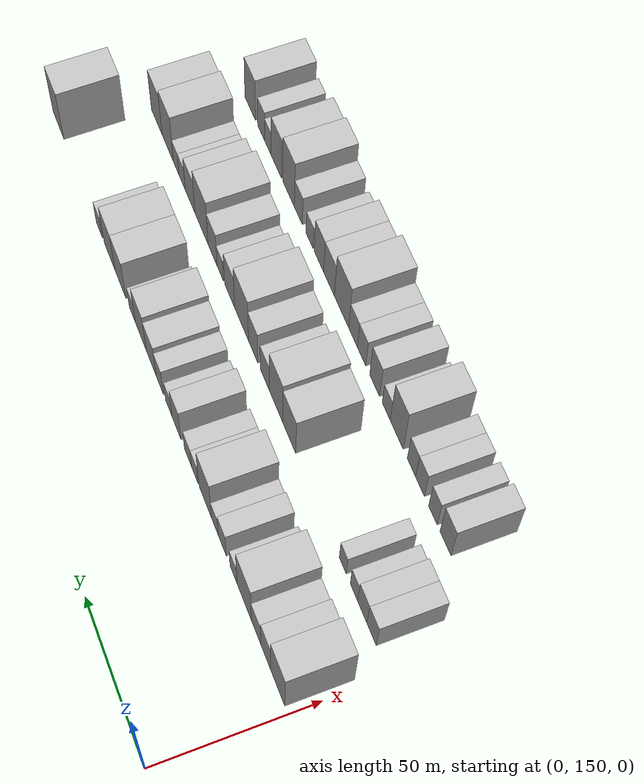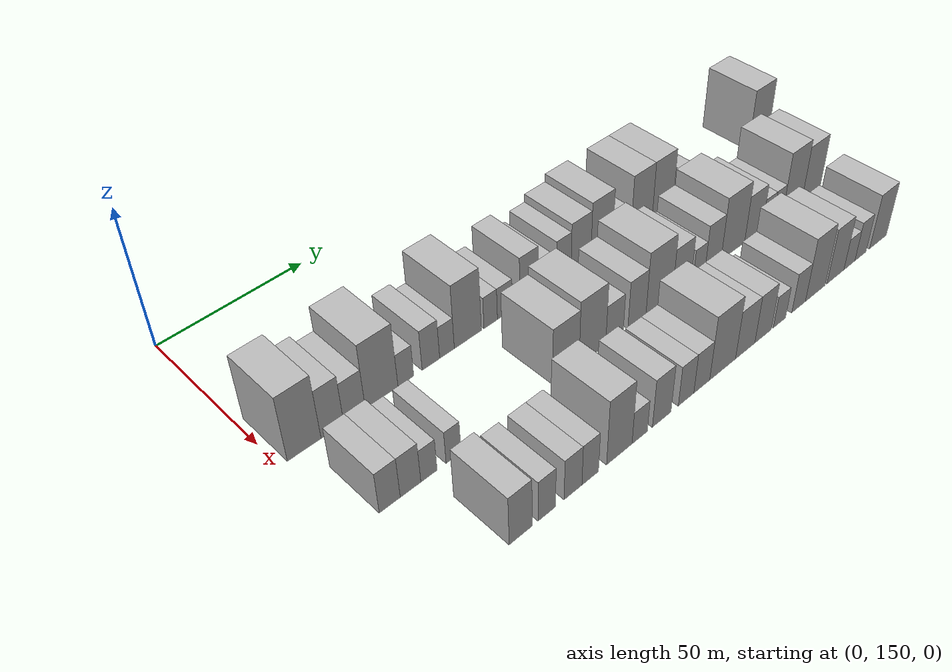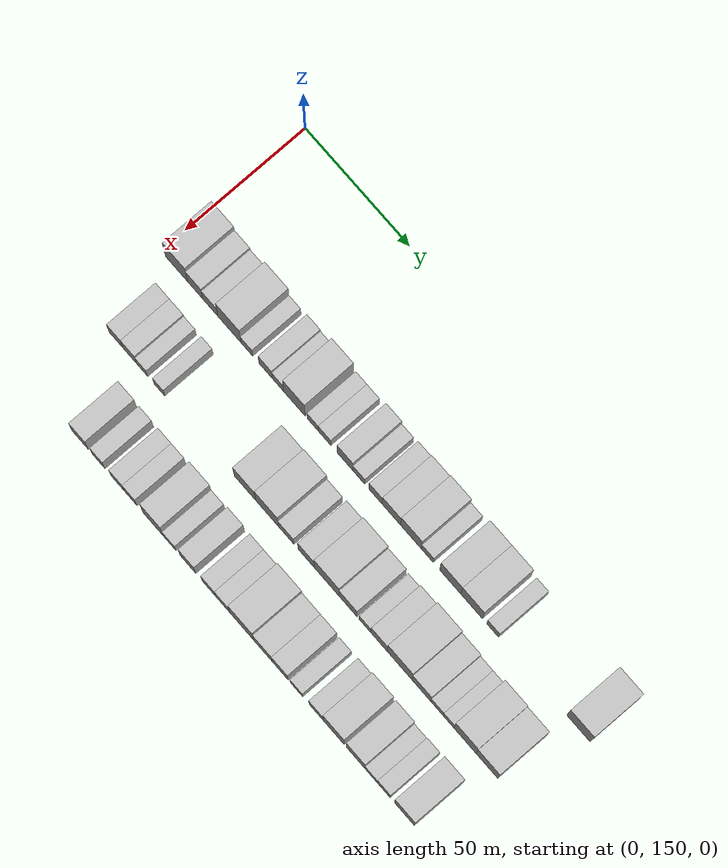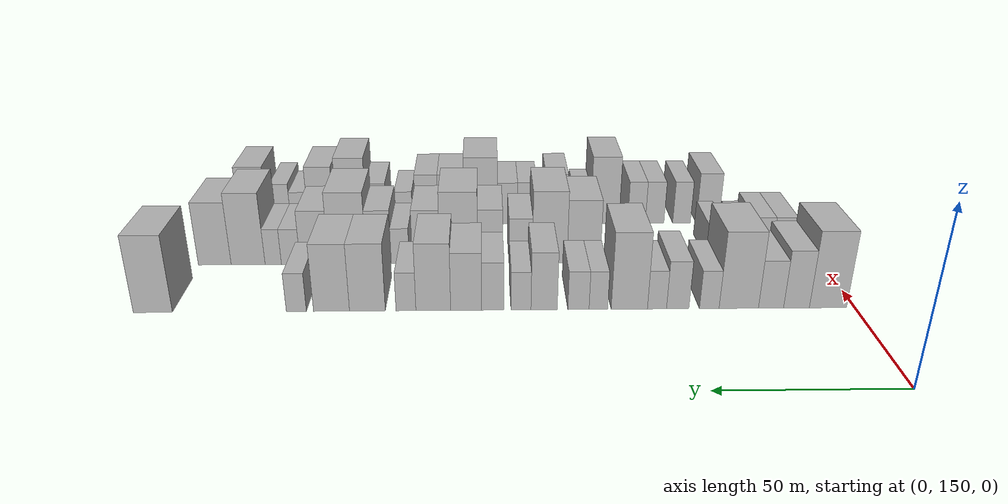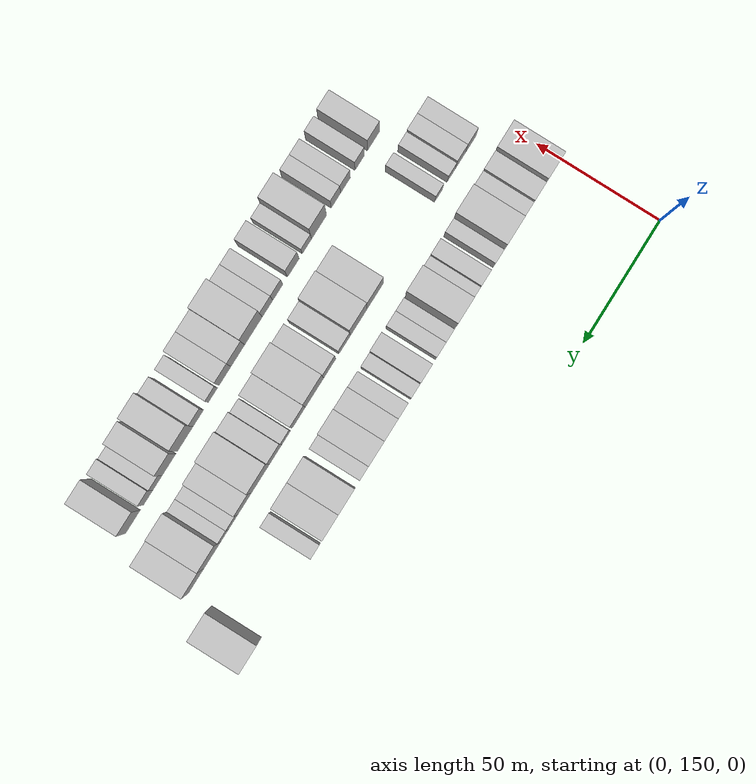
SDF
<sdf version="1.6">
 <world name="default">
  <model name="building_55">
   <static>1</static>
   <pose>50.0000 157.6588 0 0.000000 0.000000 0.000000</pose>
   <link name="link">
    <pose>0 0 12.00 0 0 0</pose>
    <collision name="collision"><geometry><box><size>20.0000 10.6210 24.0000</size></box></geometry></collision>
    <visual name="visual">
     <cast_shadows>0</cast_shadows>
     <geometry><box><size>20.0000 10.6210 24.0000</size></box></geometry>
     <material>
      <script>
       <uri>model://HANNAS_wall/materials/scripts</uri>
       <uri>model://HANNAS_wall/materials/textures</uri>
       <name>vrc/HANNAS_wall</name>
      </script>
     </material>
    </visual>
   </link>
  </model>
  <model name="building_56">
   <static>1</static>
   <pose>50.0000 166.6477 0 0.000000 0.000000 0.000000</pose>
   <link name="link">
    <pose>0 0 9.00 0 0 0</pose>
    <collision name="collision"><geometry><box><size>20.0000 7.3567 18.0000</size></box></geometry></collision>
    <visual name="visual">
     <cast_shadows>0</cast_shadows>
     <geometry><box><size>20.0000 7.3567 18.0000</size></box></geometry>
     <material>
      <script>
       <uri>model://HANNAS_wall/materials/scripts</uri>
       <uri>model://HANNAS_wall/materials/textures</uri>
       <name>vrc/HANNAS_wall</name>
      </script>
     </material>
    </visual>
   </link>
  </model>
  <model name="building_57">
   <static>1</static>
   <pose>50.0000 173.9100 0 0.000000 0.000000 0.000000</pose>
   <link name="link">
    <pose>0 0 7.50 0 0 0</pose>
    <collision name="collision"><geometry><box><size>20.0000 7.1679 15.0000</size></box></geometry></collision>
    <visual name="visual">
     <cast_shadows>0</cast_shadows>
     <geometry><box><size>20.0000 7.1679 15.0000</size></box></geometry>
     <material>
      <script>
       <uri>model://HANNAS_wall/materials/scripts</uri>
       <uri>model://HANNAS_wall/materials/textures</uri>
       <name>vrc/HANNAS_wall</name>
      </script>
     </material>
    </visual>
   </link>
  </model>
  <model name="building_58">
   <static>1</static>
   <pose>50.0000 183.1012 0 0.000000 0.000000 0.000000</pose>
   <link name="link">
    <pose>0 0 12.00 0 0 0</pose>
    <collision name="collision"><geometry><box><size>20.0000 11.2146 24.0000</size></box></geometry></collision>
    <visual name="visual">
     <cast_shadows>0</cast_shadows>
     <geometry><box><size>20.0000 11.2146 24.0000</size></box></geometry>
     <material>
      <script>
       <uri>model://HANNAS_wall/materials/scripts</uri>
       <uri>model://HANNAS_wall/materials/textures</uri>
       <name>vrc/HANNAS_wall</name>
      </script>
     </material>
    </visual>
   </link>
  </model>
  <model name="building_59">
   <static>1</static>
   <pose>50.0000 191.4912 0 0.000000 0.000000 0.000000</pose>
   <link name="link">
    <pose>0 0 6.00 0 0 0</pose>
    <collision name="collision"><geometry><box><size>20.0000 5.5652 12.0000</size></box></geometry></collision>
    <visual name="visual">
     <cast_shadows>0</cast_shadows>
     <geometry><box><size>20.0000 5.5652 12.0000</size></box></geometry>
     <material>
      <script>
       <uri>model://HANNAS_wall/materials/scripts</uri>
       <uri>model://HANNAS_wall/materials/textures</uri>
       <name>vrc/HANNAS_wall</name>
      </script>
     </material>
    </visual>
   </link>
  </model>
  <model name="building_60">
   <static>1</static>
   <pose>50.0000 200.4604 0 0.000000 0.000000 0.000000</pose>
   <link name="link">
    <pose>0 0 7.50 0 0 0</pose>
    <collision name="collision"><geometry><box><size>20.0000 6.3732 15.0000</size></box></geometry></collision>
    <visual name="visual">
     <cast_shadows>0</cast_shadows>
     <geometry><box><size>20.0000 6.3732 15.0000</size></box></geometry>
     <material>
      <script>
       <uri>model://HANNAS_wall/materials/scripts</uri>
       <uri>model://HANNAS_wall/materials/textures</uri>
       <name>vrc/HANNAS_wall</name>
      </script>
     </material>
    </visual>
   </link>
  </model>
  <model name="building_61">
   <static>1</static>
   <pose>50.0000 206.3600 0 0.000000 0.000000 0.000000</pose>
   <link name="link">
    <pose>0 0 6.00 0 0 0</pose>
    <collision name="collision"><geometry><box><size>20.0000 5.4259 12.0000</size></box></geometry></collision>
    <visual name="visual">
     <cast_shadows>0</cast_shadows>
     <geometry><box><size>20.0000 5.4259 12.0000</size></box></geometry>
     <material>
      <script>
       <uri>model://HANNAS_wall/materials/scripts</uri>
       <uri>model://HANNAS_wall/materials/textures</uri>
       <name>vrc/HANNAS_wall</name>
      </script>
     </material>
    </visual>
   </link>
  </model>
  <model name="building_62">
   <static>1</static>
   <pose>50.0000 214.2156 0 0.000000 0.000000 0.000000</pose>
   <link name="link">
    <pose>0 0 12.00 0 0 0</pose>
    <collision name="collision"><geometry><box><size>20.0000 10.2854 24.0000</size></box></geometry></collision>
    <visual name="visual">
     <cast_shadows>0</cast_shadows>
     <geometry><box><size>20.0000 10.2854 24.0000</size></box></geometry>
     <material>
      <script>
       <uri>model://HANNAS_wall/materials/scripts</uri>
       <uri>model://HANNAS_wall/materials/textures</uri>
       <name>vrc/HANNAS_wall</name>
      </script>
     </material>
    </visual>
   </link>
  </model>
  <model name="building_63">
   <static>1</static>
   <pose>50.0000 222.9986 0 0.000000 0.000000 0.000000</pose>
   <link name="link">
    <pose>0 0 6.00 0 0 0</pose>
    <collision name="collision"><geometry><box><size>20.0000 5.2804 12.0000</size></box></geometry></collision>
    <visual name="visual">
     <cast_shadows>0</cast_shadows>
     <geometry><box><size>20.0000 5.2804 12.0000</size></box></geometry>
     <material>
      <script>
       <uri>model://HANNAS_wall/materials/scripts</uri>
       <uri>model://HANNAS_wall/materials/textures</uri>
       <name>vrc/HANNAS_wall</name>
      </script>
     </material>
    </visual>
   </link>
  </model>
  <model name="building_64">
   <static>1</static>
   <pose>50.0000 228.6378 0 0.000000 0.000000 0.000000</pose>
   <link name="link">
    <pose>0 0 6.00 0 0 0</pose>
    <collision name="collision"><geometry><box><size>20.0000 5.9982 12.0000</size></box></geometry></collision>
    <visual name="visual">
     <cast_shadows>0</cast_shadows>
     <geometry><box><size>20.0000 5.9982 12.0000</size></box></geometry>
     <material>
      <script>
       <uri>model://HANNAS_wall/materials/scripts</uri>
       <uri>model://HANNAS_wall/materials/textures</uri>
       <name>vrc/HANNAS_wall</name>
      </script>
     </material>
    </visual>
   </link>
  </model>
  <model name="building_65">
   <static>1</static>
   <pose>50.0000 238.3654 0 0.000000 0.000000 0.000000</pose>
   <link name="link">
    <pose>0 0 9.00 0 0 0</pose>
    <collision name="collision"><geometry><box><size>20.0000 7.4569 18.0000</size></box></geometry></collision>
    <visual name="visual">
     <cast_shadows>0</cast_shadows>
     <geometry><box><size>20.0000 7.4569 18.0000</size></box></geometry>
     <material>
      <script>
       <uri>model://HANNAS_wall/materials/scripts</uri>
       <uri>model://HANNAS_wall/materials/textures</uri>
       <name>vrc/HANNAS_wall</name>
      </script>
     </material>
    </visual>
   </link>
  </model>
  <model name="building_66">
   <static>1</static>
   <pose>50.0000 244.9169 0 0.000000 0.000000 0.000000</pose>
   <link name="link">
    <pose>0 0 6.00 0 0 0</pose>
    <collision name="collision"><geometry><box><size>20.0000 5.6462 12.0000</size></box></geometry></collision>
    <visual name="visual">
     <cast_shadows>0</cast_shadows>
     <geometry><box><size>20.0000 5.6462 12.0000</size></box></geometry>
     <material>
      <script>
       <uri>model://HANNAS_wall/materials/scripts</uri>
       <uri>model://HANNAS_wall/materials/textures</uri>
       <name>vrc/HANNAS_wall</name>
      </script>
     </material>
    </visual>
   </link>
  </model>
  <model name="building_67">
   <static>1</static>
   <pose>50.0000 252.8970 0 0.000000 0.000000 0.000000</pose>
   <link name="link">
    <pose>0 0 7.50 0 0 0</pose>
    <collision name="collision"><geometry><box><size>20.0000 6.3140 15.0000</size></box></geometry></collision>
    <visual name="visual">
     <cast_shadows>0</cast_shadows>
     <geometry><box><size>20.0000 6.3140 15.0000</size></box></geometry>
     <material>
      <script>
       <uri>model://HANNAS_wall/materials/scripts</uri>
       <uri>model://HANNAS_wall/materials/textures</uri>
       <name>vrc/HANNAS_wall</name>
      </script>
     </material>
    </visual>
   </link>
  </model>
  <model name="building_68">
   <static>1</static>
   <pose>50.0000 260.4261 0 0.000000 0.000000 0.000000</pose>
   <link name="link">
    <pose>0 0 9.00 0 0 0</pose>
    <collision name="collision"><geometry><box><size>20.0000 8.7442 18.0000</size></box></geometry></collision>
    <visual name="visual">
     <cast_shadows>0</cast_shadows>
     <geometry><box><size>20.0000 8.7442 18.0000</size></box></geometry>
     <material>
      <script>
       <uri>model://HANNAS_wall/materials/scripts</uri>
       <uri>model://HANNAS_wall/materials/textures</uri>
       <name>vrc/HANNAS_wall</name>
      </script>
     </material>
    </visual>
   </link>
  </model>
  <model name="building_69">
   <static>1</static>
   <pose>50.0000 269.7042 0 0.000000 0.000000 0.000000</pose>
   <link name="link">
    <pose>0 0 10.50 0 0 0</pose>
    <collision name="collision"><geometry><box><size>20.0000 9.8119 21.0000</size></box></geometry></collision>
    <visual name="visual">
     <cast_shadows>0</cast_shadows>
     <geometry><box><size>20.0000 9.8119 21.0000</size></box></geometry>
     <material>
      <script>
       <uri>model://HANNAS_wall/materials/scripts</uri>
       <uri>model://HANNAS_wall/materials/textures</uri>
       <name>vrc/HANNAS_wall</name>
      </script>
     </material>
    </visual>
   </link>
  </model>
  <model name="building_70">
   <static>1</static>
   <pose>50.0000 277.4177 0 0.000000 0.000000 0.000000</pose>
   <link name="link">
    <pose>0 0 6.00 0 0 0</pose>
    <collision name="collision"><geometry><box><size>20.0000 5.6151 12.0000</size></box></geometry></collision>
    <visual name="visual">
     <cast_shadows>0</cast_shadows>
     <geometry><box><size>20.0000 5.6151 12.0000</size></box></geometry>
     <material>
      <script>
       <uri>model://HANNAS_wall/materials/scripts</uri>
       <uri>model://HANNAS_wall/materials/textures</uri>
       <name>vrc/HANNAS_wall</name>
      </script>
     </material>
    </visual>
   </link>
  </model>
  <model name="building_71">
   <static>1</static>
   <pose>50.0000 288.2781 0 0.000000 0.000000 0.000000</pose>
   <link name="link">
    <pose>0 0 10.50 0 0 0</pose>
    <collision name="collision"><geometry><box><size>20.0000 10.1058 21.0000</size></box></geometry></collision>
    <visual name="visual">
     <cast_shadows>0</cast_shadows>
     <geometry><box><size>20.0000 10.1058 21.0000</size></box></geometry>
     <material>
      <script>
       <uri>model://HANNAS_wall/materials/scripts</uri>
       <uri>model://HANNAS_wall/materials/textures</uri>
       <name>vrc/HANNAS_wall</name>
      </script>
     </material>
    </visual>
   </link>
  </model>
  <model name="building_72">
   <static>1</static>
   <pose>50.0000 298.3959 0 0.000000 0.000000 0.000000</pose>
   <link name="link">
    <pose>0 0 10.50 0 0 0</pose>
    <collision name="collision"><geometry><box><size>20.0000 10.1297 21.0000</size></box></geometry></collision>
    <visual name="visual">
     <cast_shadows>0</cast_shadows>
     <geometry><box><size>20.0000 10.1297 21.0000</size></box></geometry>
     <material>
      <script>
       <uri>model://HANNAS_wall/materials/scripts</uri>
       <uri>model://HANNAS_wall/materials/textures</uri>
       <name>vrc/HANNAS_wall</name>
      </script>
     </material>
    </visual>
   </link>
  </model>
  <model name="building_73">
   <static>1</static>
   <pose>50.0000 308.2839 0 0.000000 0.000000 0.000000</pose>
   <link name="link">
    <pose>0 0 6.00 0 0 0</pose>
    <collision name="collision"><geometry><box><size>20.0000 5.6463 12.0000</size></box></geometry></collision>
    <visual name="visual">
     <cast_shadows>0</cast_shadows>
     <geometry><box><size>20.0000 5.6463 12.0000</size></box></geometry>
     <material>
      <script>
       <uri>model://HANNAS_wall/materials/scripts</uri>
       <uri>model://HANNAS_wall/materials/textures</uri>
       <name>vrc/HANNAS_wall</name>
      </script>
     </material>
    </visual>
   </link>
  </model>
  <model name="building_74">
   <static>1</static>
   <pose>50.0000 348.5858 0 0.000000 0.000000 0.000000</pose>
   <link name="link">
    <pose>0 0 12.00 0 0 0</pose>
    <collision name="collision"><geometry><box><size>20.0000 10.9858 24.0000</size></box></geometry></collision>
    <visual name="visual">
     <cast_shadows>0</cast_shadows>
     <geometry><box><size>20.0000 10.9858 24.0000</size></box></geometry>
     <material>
      <script>
       <uri>model://HANNAS_wall/materials/scripts</uri>
       <uri>model://HANNAS_wall/materials/textures</uri>
       <name>vrc/HANNAS_wall</name>
      </script>
     </material>
    </visual>
   </link>
  </model>
  <model name="building_133">
   <static>1</static>
   <pose>79.0000 162.3231 0 0.000000 0.000000 0.000000</pose>
   <link name="link">
    <pose>0 0 7.50 0 0 0</pose>
    <collision name="collision"><geometry><box><size>20.0000 6.6489 15.0000</size></box></geometry></collision>
    <visual name="visual">
     <cast_shadows>0</cast_shadows>
     <geometry><box><size>20.0000 6.6489 15.0000</size></box></geometry>
     <material>
      <script>
       <uri>model://HANNAS_wall/materials/scripts</uri>
       <uri>model://HANNAS_wall/materials/textures</uri>
       <name>vrc/HANNAS_wall</name>
      </script>
     </material>
    </visual>
   </link>
  </model>
  <model name="building_134">
   <static>1</static>
   <pose>79.0000 168.9756 0 0.000000 0.000000 0.000000</pose>
   <link name="link">
    <pose>0 0 7.50 0 0 0</pose>
    <collision name="collision"><geometry><box><size>20.0000 6.6561 15.0000</size></box></geometry></collision>
    <visual name="visual">
     <cast_shadows>0</cast_shadows>
     <geometry><box><size>20.0000 6.6561 15.0000</size></box></geometry>
     <material>
      <script>
       <uri>model://HANNAS_wall/materials/scripts</uri>
       <uri>model://HANNAS_wall/materials/textures</uri>
       <name>vrc/HANNAS_wall</name>
      </script>
     </material>
    </visual>
   </link>
  </model>
  <model name="building_135">
   <static>1</static>
   <pose>79.0000 174.9876 0 0.000000 0.000000 0.000000</pose>
   <link name="link">
    <pose>0 0 6.00 0 0 0</pose>
    <collision name="collision"><geometry><box><size>20.0000 5.3680 12.0000</size></box></geometry></collision>
    <visual name="visual">
     <cast_shadows>0</cast_shadows>
     <geometry><box><size>20.0000 5.3680 12.0000</size></box></geometry>
     <material>
      <script>
       <uri>model://HANNAS_wall/materials/scripts</uri>
       <uri>model://HANNAS_wall/materials/textures</uri>
       <name>vrc/HANNAS_wall</name>
      </script>
     </material>
    </visual>
   </link>
  </model>
  <model name="building_136">
   <static>1</static>
   <pose>79.0000 183.2345 0 0.000000 0.000000 0.000000</pose>
   <link name="link">
    <pose>0 0 6.00 0 0 0</pose>
    <collision name="collision"><geometry><box><size>20.0000 5.1258 12.0000</size></box></geometry></collision>
    <visual name="visual">
     <cast_shadows>0</cast_shadows>
     <geometry><box><size>20.0000 5.1258 12.0000</size></box></geometry>
     <material>
      <script>
       <uri>model://HANNAS_wall/materials/scripts</uri>
       <uri>model://HANNAS_wall/materials/textures</uri>
       <name>vrc/HANNAS_wall</name>
      </script>
     </material>
    </visual>
   </link>
  </model>
  <model name="building_137">
   <static>1</static>
   <pose>79.0000 224.2897 0 0.000000 0.000000 0.000000</pose>
   <link name="link">
    <pose>0 0 10.50 0 0 0</pose>
    <collision name="collision"><geometry><box><size>20.0000 10.3282 21.0000</size></box></geometry></collision>
    <visual name="visual">
     <cast_shadows>0</cast_shadows>
     <geometry><box><size>20.0000 10.3282 21.0000</size></box></geometry>
     <material>
      <script>
       <uri>model://HANNAS_wall/materials/scripts</uri>
       <uri>model://HANNAS_wall/materials/textures</uri>
       <name>vrc/HANNAS_wall</name>
      </script>
     </material>
    </visual>
   </link>
  </model>
  <model name="building_138">
   <static>1</static>
   <pose>79.0000 234.8570 0 0.000000 0.000000 0.000000</pose>
   <link name="link">
    <pose>0 0 12.00 0 0 0</pose>
    <collision name="collision"><geometry><box><size>20.0000 10.8065 24.0000</size></box></geometry></collision>
    <visual name="visual">
     <cast_shadows>0</cast_shadows>
     <geometry><box><size>20.0000 10.8065 24.0000</size></box></geometry>
     <material>
      <script>
       <uri>model://HANNAS_wall/materials/scripts</uri>
       <uri>model://HANNAS_wall/materials/textures</uri>
       <name>vrc/HANNAS_wall</name>
      </script>
     </material>
    </visual>
   </link>
  </model>
  <model name="building_139">
   <static>1</static>
   <pose>79.0000 243.9100 0 0.000000 0.000000 0.000000</pose>
   <link name="link">
    <pose>0 0 7.50 0 0 0</pose>
    <collision name="collision"><geometry><box><size>20.0000 7.2995 15.0000</size></box></geometry></collision>
    <visual name="visual">
     <cast_shadows>0</cast_shadows>
     <geometry><box><size>20.0000 7.2995 15.0000</size></box></geometry>
     <material>
      <script>
       <uri>model://HANNAS_wall/materials/scripts</uri>
       <uri>model://HANNAS_wall/materials/textures</uri>
       <name>vrc/HANNAS_wall</name>
      </script>
     </material>
    </visual>
   </link>
  </model>
  <model name="building_140">
   <static>1</static>
   <pose>79.0000 253.4357 0 0.000000 0.000000 0.000000</pose>
   <link name="link">
    <pose>0 0 9.00 0 0 0</pose>
    <collision name="collision"><geometry><box><size>20.0000 7.7518 18.0000</size></box></geometry></collision>
    <visual name="visual">
     <cast_shadows>0</cast_shadows>
     <geometry><box><size>20.0000 7.7518 18.0000</size></box></geometry>
     <material>
      <script>
       <uri>model://HANNAS_wall/materials/scripts</uri>
       <uri>model://HANNAS_wall/materials/textures</uri>
       <name>vrc/HANNAS_wall</name>
      </script>
     </material>
    </visual>
   </link>
  </model>
  <model name="building_141">
   <static>1</static>
   <pose>79.0000 263.1864 0 0.000000 0.000000 0.000000</pose>
   <link name="link">
    <pose>0 0 12.00 0 0 0</pose>
    <collision name="collision"><geometry><box><size>20.0000 11.7497 24.0000</size></box></geometry></collision>
    <visual name="visual">
     <cast_shadows>0</cast_shadows>
     <geometry><box><size>20.0000 11.7497 24.0000</size></box></geometry>
     <material>
      <script>
       <uri>model://HANNAS_wall/materials/scripts</uri>
       <uri>model://HANNAS_wall/materials/textures</uri>
       <name>vrc/HANNAS_wall</name>
      </script>
     </material>
    </visual>
   </link>
  </model>
  <model name="building_142">
   <static>1</static>
   <pose>79.0000 273.2965 0 0.000000 0.000000 0.000000</pose>
   <link name="link">
    <pose>0 0 9.00 0 0 0</pose>
    <collision name="collision"><geometry><box><size>20.0000 8.4703 18.0000</size></box></geometry></collision>
    <visual name="visual">
     <cast_shadows>0</cast_shadows>
     <geometry><box><size>20.0000 8.4703 18.0000</size></box></geometry>
     <material>
      <script>
       <uri>model://HANNAS_wall/materials/scripts</uri>
       <uri>model://HANNAS_wall/materials/textures</uri>
       <name>vrc/HANNAS_wall</name>
      </script>
     </material>
    </visual>
   </link>
  </model>
  <model name="building_143">
   <static>1</static>
   <pose>79.0000 281.3172 0 0.000000 0.000000 0.000000</pose>
   <link name="link">
    <pose>0 0 6.00 0 0 0</pose>
    <collision name="collision"><geometry><box><size>20.0000 5.5711 12.0000</size></box></geometry></collision>
    <visual name="visual">
     <cast_shadows>0</cast_shadows>
     <geometry><box><size>20.0000 5.5711 12.0000</size></box></geometry>
     <material>
      <script>
       <uri>model://HANNAS_wall/materials/scripts</uri>
       <uri>model://HANNAS_wall/materials/textures</uri>
       <name>vrc/HANNAS_wall</name>
      </script>
     </material>
    </visual>
   </link>
  </model>
  <model name="building_144">
   <static>1</static>
   <pose>79.0000 287.9850 0 0.000000 0.000000 0.000000</pose>
   <link name="link">
    <pose>0 0 9.00 0 0 0</pose>
    <collision name="collision"><geometry><box><size>20.0000 7.7645 18.0000</size></box></geometry></collision>
    <visual name="visual">
     <cast_shadows>0</cast_shadows>
     <geometry><box><size>20.0000 7.7645 18.0000</size></box></geometry>
     <material>
      <script>
       <uri>model://HANNAS_wall/materials/scripts</uri>
       <uri>model://HANNAS_wall/materials/textures</uri>
       <name>vrc/HANNAS_wall</name>
      </script>
     </material>
    </visual>
   </link>
  </model>
  <model name="building_145">
   <static>1</static>
   <pose>79.0000 297.7089 0 0.000000 0.000000 0.000000</pose>
   <link name="link">
    <pose>0 0 12.00 0 0 0</pose>
    <collision name="collision"><geometry><box><size>20.0000 11.6833 24.0000</size></box></geometry></collision>
    <visual name="visual">
     <cast_shadows>0</cast_shadows>
     <geometry><box><size>20.0000 11.6833 24.0000</size></box></geometry>
     <material>
      <script>
       <uri>model://HANNAS_wall/materials/scripts</uri>
       <uri>model://HANNAS_wall/materials/textures</uri>
       <name>vrc/HANNAS_wall</name>
      </script>
     </material>
    </visual>
   </link>
  </model>
  <model name="building_146">
   <static>1</static>
   <pose>79.0000 307.9580 0 0.000000 0.000000 0.000000</pose>
   <link name="link">
    <pose>0 0 9.00 0 0 0</pose>
    <collision name="collision"><geometry><box><size>20.0000 8.8148 18.0000</size></box></geometry></collision>
    <visual name="visual">
     <cast_shadows>0</cast_shadows>
     <geometry><box><size>20.0000 8.8148 18.0000</size></box></geometry>
     <material>
      <script>
       <uri>model://HANNAS_wall/materials/scripts</uri>
       <uri>model://HANNAS_wall/materials/textures</uri>
       <name>vrc/HANNAS_wall</name>
      </script>
     </material>
    </visual>
   </link>
  </model>
  <model name="building_147">
   <static>1</static>
   <pose>79.0000 315.2713 0 0.000000 0.000000 0.000000</pose>
   <link name="link">
    <pose>0 0 6.00 0 0 0</pose>
    <collision name="collision"><geometry><box><size>20.0000 5.8119 12.0000</size></box></geometry></collision>
    <visual name="visual">
     <cast_shadows>0</cast_shadows>
     <geometry><box><size>20.0000 5.8119 12.0000</size></box></geometry>
     <material>
      <script>
       <uri>model://HANNAS_wall/materials/scripts</uri>
       <uri>model://HANNAS_wall/materials/textures</uri>
       <name>vrc/HANNAS_wall</name>
      </script>
     </material>
    </visual>
   </link>
  </model>
  <model name="building_148">
   <static>1</static>
   <pose>79.0000 320.7022 0 0.000000 0.000000 0.000000</pose>
   <link name="link">
    <pose>0 0 6.00 0 0 0</pose>
    <collision name="collision"><geometry><box><size>20.0000 5.0499 12.0000</size></box></geometry></collision>
    <visual name="visual">
     <cast_shadows>0</cast_shadows>
     <geometry><box><size>20.0000 5.0499 12.0000</size></box></geometry>
     <material>
      <script>
       <uri>model://HANNAS_wall/materials/scripts</uri>
       <uri>model://HANNAS_wall/materials/textures</uri>
       <name>vrc/HANNAS_wall</name>
      </script>
     </material>
    </visual>
   </link>
  </model>
  <model name="building_149">
   <static>1</static>
   <pose>79.0000 328.4737 0 0.000000 0.000000 0.000000</pose>
   <link name="link">
    <pose>0 0 12.00 0 0 0</pose>
    <collision name="collision"><geometry><box><size>20.0000 10.4930 24.0000</size></box></geometry></collision>
    <visual name="visual">
     <cast_shadows>0</cast_shadows>
     <geometry><box><size>20.0000 10.4930 24.0000</size></box></geometry>
     <material>
      <script>
       <uri>model://HANNAS_wall/materials/scripts</uri>
       <uri>model://HANNAS_wall/materials/textures</uri>
       <name>vrc/HANNAS_wall</name>
      </script>
     </material>
    </visual>
   </link>
  </model>
  <model name="building_150">
   <static>1</static>
   <pose>79.0000 338.7914 0 0.000000 0.000000 0.000000</pose>
   <link name="link">
    <pose>0 0 10.50 0 0 0</pose>
    <collision name="collision"><geometry><box><size>20.0000 10.1424 21.0000</size></box></geometry></collision>
    <visual name="visual">
     <cast_shadows>0</cast_shadows>
     <geometry><box><size>20.0000 10.1424 21.0000</size></box></geometry>
     <material>
      <script>
       <uri>model://HANNAS_wall/materials/scripts</uri>
       <uri>model://HANNAS_wall/materials/textures</uri>
       <name>vrc/HANNAS_wall</name>
      </script>
     </material>
    </visual>
   </link>
  </model>
  <model name="building_208">
   <static>1</static>
   <pose>108.0000 179.1289 0 0.000000 0.000000 0.000000</pose>
   <link name="link">
    <pose>0 0 9.00 0 0 0</pose>
    <collision name="collision"><geometry><box><size>20.0000 7.6927 18.0000</size></box></geometry></collision>
    <visual name="visual">
     <cast_shadows>0</cast_shadows>
     <geometry><box><size>20.0000 7.6927 18.0000</size></box></geometry>
     <material>
      <script>
       <uri>model://HANNAS_wall/materials/scripts</uri>
       <uri>model://HANNAS_wall/materials/textures</uri>
       <name>vrc/HANNAS_wall</name>
      </script>
     </material>
    </visual>
   </link>
  </model>
  <model name="building_209">
   <static>1</static>
   <pose>108.0000 187.9905 0 0.000000 0.000000 0.000000</pose>
   <link name="link">
    <pose>0 0 7.50 0 0 0</pose>
    <collision name="collision"><geometry><box><size>20.0000 6.0304 15.0000</size></box></geometry></collision>
    <visual name="visual">
     <cast_shadows>0</cast_shadows>
     <geometry><box><size>20.0000 6.0304 15.0000</size></box></geometry>
     <material>
      <script>
       <uri>model://HANNAS_wall/materials/scripts</uri>
       <uri>model://HANNAS_wall/materials/textures</uri>
       <name>vrc/HANNAS_wall</name>
      </script>
     </material>
    </visual>
   </link>
  </model>
  <model name="building_210">
   <static>1</static>
   <pose>108.0000 197.1771 0 0.000000 0.000000 0.000000</pose>
   <link name="link">
    <pose>0 0 7.50 0 0 0</pose>
    <collision name="collision"><geometry><box><size>20.0000 6.3428 15.0000</size></box></geometry></collision>
    <visual name="visual">
     <cast_shadows>0</cast_shadows>
     <geometry><box><size>20.0000 6.3428 15.0000</size></box></geometry>
     <material>
      <script>
       <uri>model://HANNAS_wall/materials/scripts</uri>
       <uri>model://HANNAS_wall/materials/textures</uri>
       <name>vrc/HANNAS_wall</name>
      </script>
     </material>
    </visual>
   </link>
  </model>
  <model name="building_211">
   <static>1</static>
   <pose>108.0000 203.3710 0 0.000000 0.000000 0.000000</pose>
   <link name="link">
    <pose>0 0 7.50 0 0 0</pose>
    <collision name="collision"><geometry><box><size>20.0000 6.0450 15.0000</size></box></geometry></collision>
    <visual name="visual">
     <cast_shadows>0</cast_shadows>
     <geometry><box><size>20.0000 6.0450 15.0000</size></box></geometry>
     <material>
      <script>
       <uri>model://HANNAS_wall/materials/scripts</uri>
       <uri>model://HANNAS_wall/materials/textures</uri>
       <name>vrc/HANNAS_wall</name>
      </script>
     </material>
    </visual>
   </link>
  </model>
  <model name="building_212">
   <static>1</static>
   <pose>108.0000 214.2206 0 0.000000 0.000000 0.000000</pose>
   <link name="link">
    <pose>0 0 12.00 0 0 0</pose>
    <collision name="collision"><geometry><box><size>20.0000 9.6543 24.0000</size></box></geometry></collision>
    <visual name="visual">
     <cast_shadows>0</cast_shadows>
     <geometry><box><size>20.0000 9.6543 24.0000</size></box></geometry>
     <material>
      <script>
       <uri>model://HANNAS_wall/materials/scripts</uri>
       <uri>model://HANNAS_wall/materials/textures</uri>
       <name>vrc/HANNAS_wall</name>
      </script>
     </material>
    </visual>
   </link>
  </model>
  <model name="building_213">
   <static>1</static>
   <pose>108.0000 222.0352 0 0.000000 0.000000 0.000000</pose>
   <link name="link">
    <pose>0 0 6.00 0 0 0</pose>
    <collision name="collision"><geometry><box><size>20.0000 5.9749 12.0000</size></box></geometry></collision>
    <visual name="visual">
     <cast_shadows>0</cast_shadows>
     <geometry><box><size>20.0000 5.9749 12.0000</size></box></geometry>
     <material>
      <script>
       <uri>model://HANNAS_wall/materials/scripts</uri>
       <uri>model://HANNAS_wall/materials/textures</uri>
       <name>vrc/HANNAS_wall</name>
      </script>
     </material>
    </visual>
   </link>
  </model>
  <model name="building_214">
   <static>1</static>
   <pose>108.0000 230.7642 0 0.000000 0.000000 0.000000</pose>
   <link name="link">
    <pose>0 0 9.00 0 0 0</pose>
    <collision name="collision"><geometry><box><size>20.0000 7.4831 18.0000</size></box></geometry></collision>
    <visual name="visual">
     <cast_shadows>0</cast_shadows>
     <geometry><box><size>20.0000 7.4831 18.0000</size></box></geometry>
     <material>
      <script>
       <uri>model://HANNAS_wall/materials/scripts</uri>
       <uri>model://HANNAS_wall/materials/textures</uri>
       <name>vrc/HANNAS_wall</name>
      </script>
     </material>
    </visual>
   </link>
  </model>
  <model name="building_215">
   <static>1</static>
   <pose>108.0000 240.7314 0 0.000000 0.000000 0.000000</pose>
   <link name="link">
    <pose>0 0 7.50 0 0 0</pose>
    <collision name="collision"><geometry><box><size>20.0000 6.4513 15.0000</size></box></geometry></collision>
    <visual name="visual">
     <cast_shadows>0</cast_shadows>
     <geometry><box><size>20.0000 6.4513 15.0000</size></box></geometry>
     <material>
      <script>
       <uri>model://HANNAS_wall/materials/scripts</uri>
       <uri>model://HANNAS_wall/materials/textures</uri>
       <name>vrc/HANNAS_wall</name>
      </script>
     </material>
    </visual>
   </link>
  </model>
  <model name="building_216">
   <static>1</static>
   <pose>108.0000 247.3378 0 0.000000 0.000000 0.000000</pose>
   <link name="link">
    <pose>0 0 7.50 0 0 0</pose>
    <collision name="collision"><geometry><box><size>20.0000 6.7614 15.0000</size></box></geometry></collision>
    <visual name="visual">
     <cast_shadows>0</cast_shadows>
     <geometry><box><size>20.0000 6.7614 15.0000</size></box></geometry>
     <material>
      <script>
       <uri>model://HANNAS_wall/materials/scripts</uri>
       <uri>model://HANNAS_wall/materials/textures</uri>
       <name>vrc/HANNAS_wall</name>
      </script>
     </material>
    </visual>
   </link>
  </model>
  <model name="building_217">
   <static>1</static>
   <pose>108.0000 256.3867 0 0.000000 0.000000 0.000000</pose>
   <link name="link">
    <pose>0 0 12.00 0 0 0</pose>
    <collision name="collision"><geometry><box><size>20.0000 11.3365 24.0000</size></box></geometry></collision>
    <visual name="visual">
     <cast_shadows>0</cast_shadows>
     <geometry><box><size>20.0000 11.3365 24.0000</size></box></geometry>
     <material>
      <script>
       <uri>model://HANNAS_wall/materials/scripts</uri>
       <uri>model://HANNAS_wall/materials/textures</uri>
       <name>vrc/HANNAS_wall</name>
      </script>
     </material>
    </visual>
   </link>
  </model>
  <model name="building_218">
   <static>1</static>
   <pose>108.0000 266.4377 0 0.000000 0.000000 0.000000</pose>
   <link name="link">
    <pose>0 0 9.00 0 0 0</pose>
    <collision name="collision"><geometry><box><size>20.0000 8.7654 18.0000</size></box></geometry></collision>
    <visual name="visual">
     <cast_shadows>0</cast_shadows>
     <geometry><box><size>20.0000 8.7654 18.0000</size></box></geometry>
     <material>
      <script>
       <uri>model://HANNAS_wall/materials/scripts</uri>
       <uri>model://HANNAS_wall/materials/textures</uri>
       <name>vrc/HANNAS_wall</name>
      </script>
     </material>
    </visual>
   </link>
  </model>
  <model name="building_219">
   <static>1</static>
   <pose>108.0000 274.6339 0 0.000000 0.000000 0.000000</pose>
   <link name="link">
    <pose>0 0 9.00 0 0 0</pose>
    <collision name="collision"><geometry><box><size>20.0000 7.6271 18.0000</size></box></geometry></collision>
    <visual name="visual">
     <cast_shadows>0</cast_shadows>
     <geometry><box><size>20.0000 7.6271 18.0000</size></box></geometry>
     <material>
      <script>
       <uri>model://HANNAS_wall/materials/scripts</uri>
       <uri>model://HANNAS_wall/materials/textures</uri>
       <name>vrc/HANNAS_wall</name>
      </script>
     </material>
    </visual>
   </link>
  </model>
  <model name="building_220">
   <static>1</static>
   <pose>108.0000 282.3745 0 0.000000 0.000000 0.000000</pose>
   <link name="link">
    <pose>0 0 6.00 0 0 0</pose>
    <collision name="collision"><geometry><box><size>20.0000 5.8543 12.0000</size></box></geometry></collision>
    <visual name="visual">
     <cast_shadows>0</cast_shadows>
     <geometry><box><size>20.0000 5.8543 12.0000</size></box></geometry>
     <material>
      <script>
       <uri>model://HANNAS_wall/materials/scripts</uri>
       <uri>model://HANNAS_wall/materials/textures</uri>
       <name>vrc/HANNAS_wall</name>
      </script>
     </material>
    </visual>
   </link>
  </model>
  <model name="building_221">
   <static>1</static>
   <pose>108.0000 291.6507 0 0.000000 0.000000 0.000000</pose>
   <link name="link">
    <pose>0 0 7.50 0 0 0</pose>
    <collision name="collision"><geometry><box><size>20.0000 6.6980 15.0000</size></box></geometry></collision>
    <visual name="visual">
     <cast_shadows>0</cast_shadows>
     <geometry><box><size>20.0000 6.6980 15.0000</size></box></geometry>
     <material>
      <script>
       <uri>model://HANNAS_wall/materials/scripts</uri>
       <uri>model://HANNAS_wall/materials/textures</uri>
       <name>vrc/HANNAS_wall</name>
      </script>
     </material>
    </visual>
   </link>
  </model>
  <model name="building_222">
   <static>1</static>
   <pose>108.0000 299.9530 0 0.000000 0.000000 0.000000</pose>
   <link name="link">
    <pose>0 0 12.00 0 0 0</pose>
    <collision name="collision"><geometry><box><size>20.0000 9.9066 24.0000</size></box></geometry></collision>
    <visual name="visual">
     <cast_shadows>0</cast_shadows>
     <geometry><box><size>20.0000 9.9066 24.0000</size></box></geometry>
     <material>
      <script>
       <uri>model://HANNAS_wall/materials/scripts</uri>
       <uri>model://HANNAS_wall/materials/textures</uri>
       <name>vrc/HANNAS_wall</name>
      </script>
     </material>
    </visual>
   </link>
  </model>
  <model name="building_223">
   <static>1</static>
   <pose>108.0000 310.3082 0 0.000000 0.000000 0.000000</pose>
   <link name="link">
    <pose>0 0 10.50 0 0 0</pose>
    <collision name="collision"><geometry><box><size>20.0000 8.8038 21.0000</size></box></geometry></collision>
    <visual name="visual">
     <cast_shadows>0</cast_shadows>
     <geometry><box><size>20.0000 8.8038 21.0000</size></box></geometry>
     <material>
      <script>
       <uri>model://HANNAS_wall/materials/scripts</uri>
       <uri>model://HANNAS_wall/materials/textures</uri>
       <name>vrc/HANNAS_wall</name>
      </script>
     </material>
    </visual>
   </link>
  </model>
  <model name="building_224">
   <static>1</static>
   <pose>108.0000 317.6346 0 0.000000 0.000000 0.000000</pose>
   <link name="link">
    <pose>0 0 6.00 0 0 0</pose>
    <collision name="collision"><geometry><box><size>20.0000 5.8489 12.0000</size></box></geometry></collision>
    <visual name="visual">
     <cast_shadows>0</cast_shadows>
     <geometry><box><size>20.0000 5.8489 12.0000</size></box></geometry>
     <material>
      <script>
       <uri>model://HANNAS_wall/materials/scripts</uri>
       <uri>model://HANNAS_wall/materials/textures</uri>
       <name>vrc/HANNAS_wall</name>
      </script>
     </material>
    </visual>
   </link>
  </model>
  <model name="building_225">
   <static>1</static>
   <pose>108.0000 323.5614 0 0.000000 0.000000 0.000000</pose>
   <link name="link">
    <pose>0 0 7.50 0 0 0</pose>
    <collision name="collision"><geometry><box><size>20.0000 6.0048 15.0000</size></box></geometry></collision>
    <visual name="visual">
     <cast_shadows>0</cast_shadows>
     <geometry><box><size>20.0000 6.0048 15.0000</size></box></geometry>
     <material>
      <script>
       <uri>model://HANNAS_wall/materials/scripts</uri>
       <uri>model://HANNAS_wall/materials/textures</uri>
       <name>vrc/HANNAS_wall</name>
      </script>
     </material>
    </visual>
   </link>
  </model>
  <model name="building_226">
   <static>1</static>
   <pose>108.0000 333.2476 0 0.000000 0.000000 0.000000</pose>
   <link name="link">
    <pose>0 0 10.50 0 0 0</pose>
    <collision name="collision"><geometry><box><size>20.0000 9.3675 21.0000</size></box></geometry></collision>
    <visual name="visual">
     <cast_shadows>0</cast_shadows>
     <geometry><box><size>20.0000 9.3675 21.0000</size></box></geometry>
     <material>
      <script>
       <uri>model://HANNAS_wall/materials/scripts</uri>
       <uri>model://HANNAS_wall/materials/textures</uri>
       <name>vrc/HANNAS_wall</name>
      </script>
     </material>
    </visual>
   </link>
  </model>
 </world>
</sdf>
